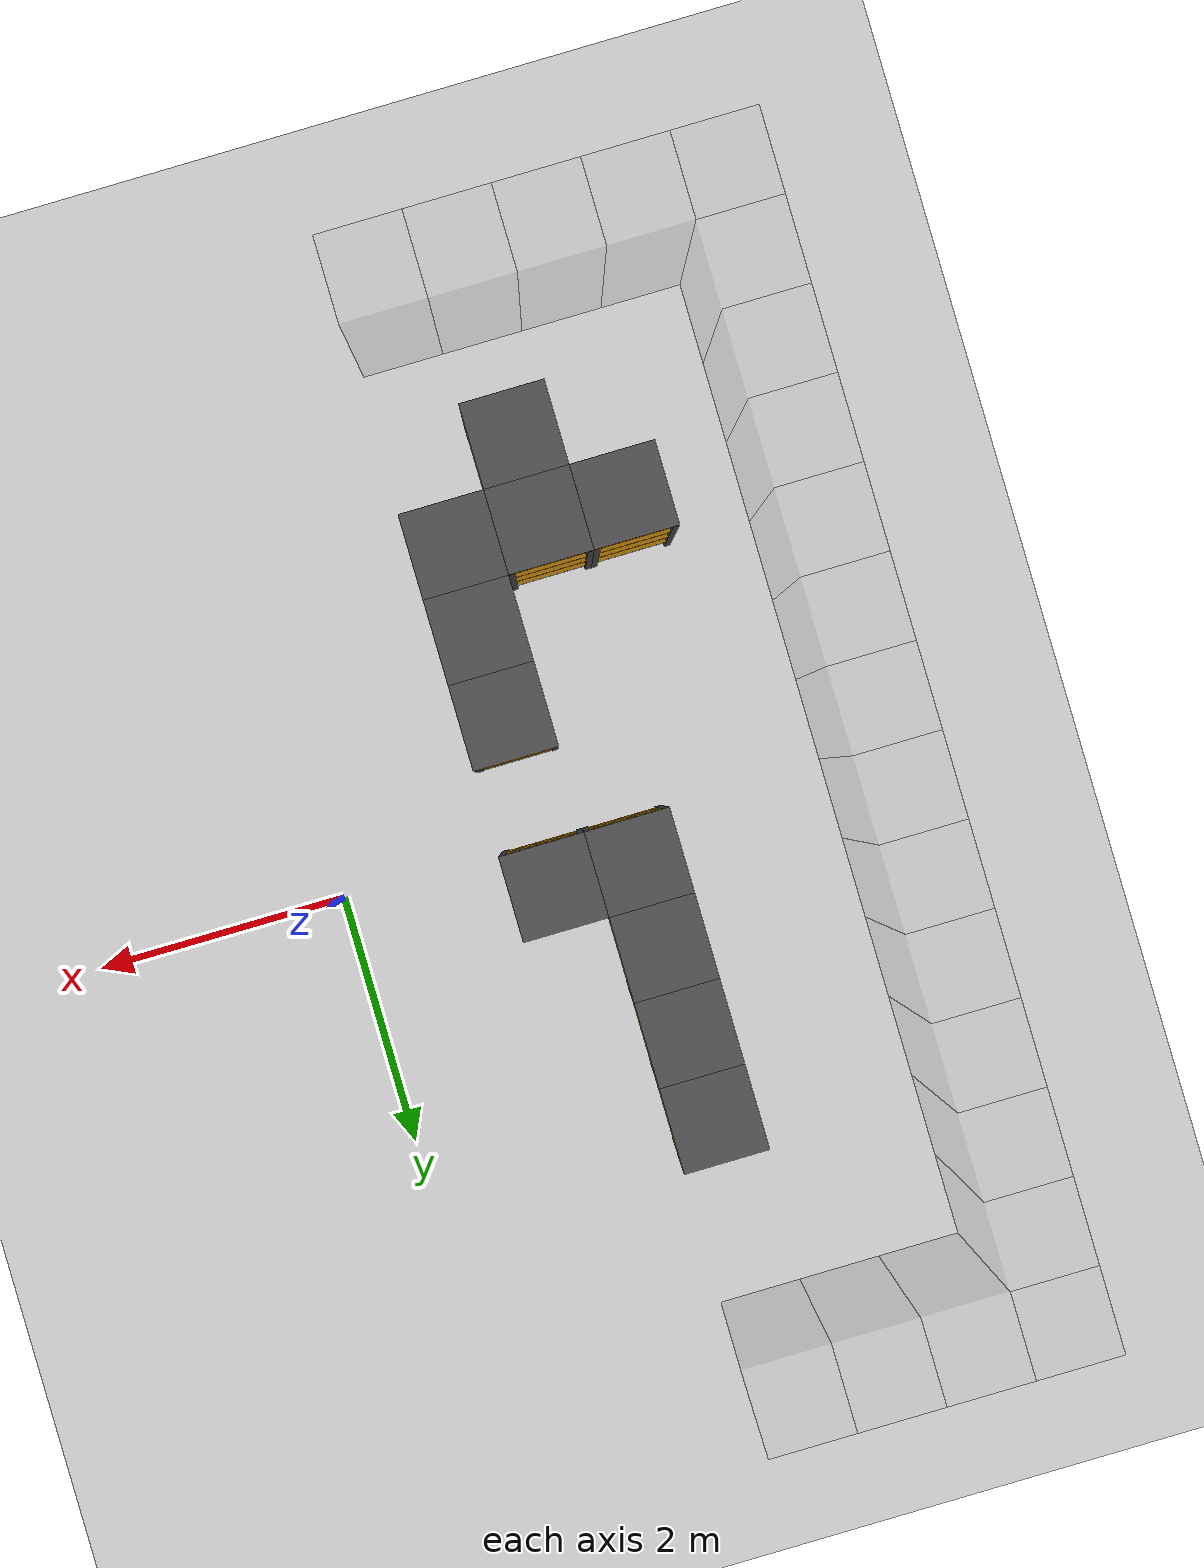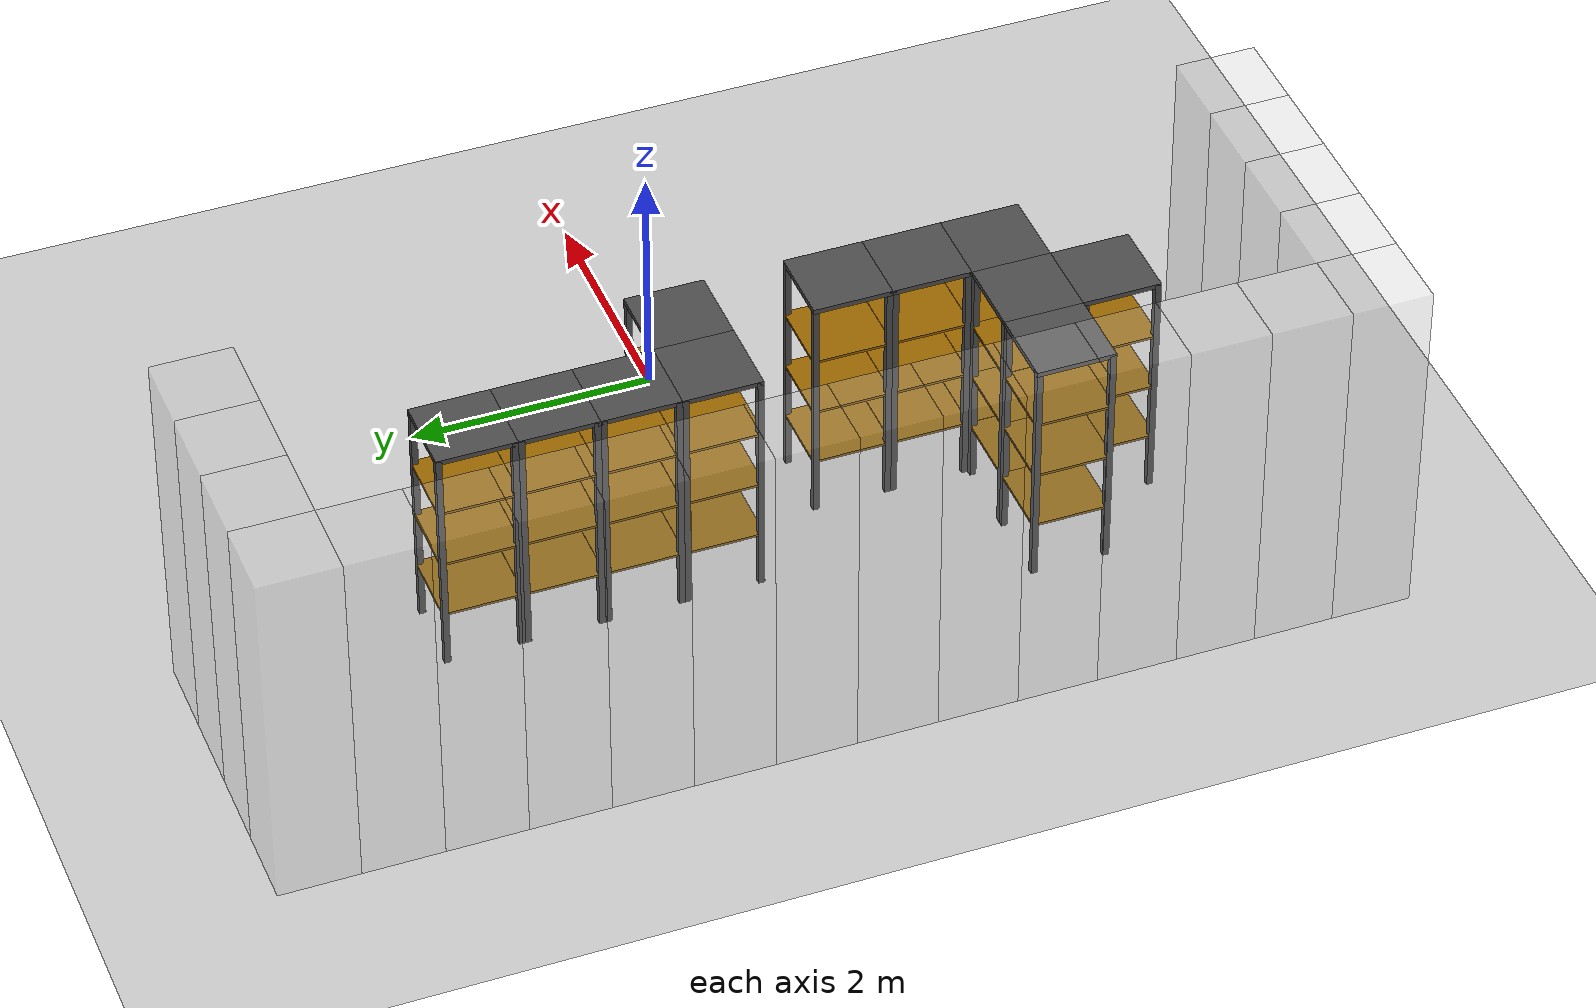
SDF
<sdf version="1.6">
 <world name="default">
  <model name="ground_plane">
   <static>1</static>
   <link name="link">
    <collision name="collision">
     <geometry><plane><normal>0 0 1</normal><size>100 100</size></plane></geometry>
     <surface><friction><ode><mu>100</mu><mu2>50</mu2></ode></friction></surface>
    </collision>
    <visual name="visual">
     <cast_shadows>0</cast_shadows>
     <geometry><plane><normal>0 0 1</normal><size>100 100</size></plane></geometry>
     <material>
      <script><uri>file://media/materials/scripts/gazebo.material</uri><name>Gazebo/Grey</name></script>
     </material>
    </visual>
   </link>
  </model>
  <model name="pole_0_0">
   <static>1</static>
   <link name="main_block">
    <pose>0 0 1.5 0 -0 0</pose>
    <collision name="collision"><geometry><box><size>0.65 0.65 3</size></box></geometry></collision>
    <visual name="visual">
     <geometry><box><size>0.65 0.65 3</size></box></geometry>
     <material><ambient>0.5 0.5 0.5 0.25</ambient><diffuse>0.75 0.75 0.75 0.25</diffuse></material>
    </visual>
   </link>
   <pose>-4.225 -4.225 0 0 -0 0</pose>
  </model>
  <model name="pole_0_1">
   <static>1</static>
   <link name="main_block">
    <pose>0 0 1.5 0 -0 0</pose>
    <collision name="collision"><geometry><box><size>0.65 0.65 3</size></box></geometry></collision>
    <visual name="visual">
     <geometry><box><size>0.65 0.65 3</size></box></geometry>
     <material><ambient>0.5 0.5 0.5 0.25</ambient><diffuse>0.75 0.75 0.75 0.25</diffuse></material>
    </visual>
   </link>
   <pose>-3.575 -4.225 0 0 -0 0</pose>
  </model>
  <model name="pole_0_2">
   <static>1</static>
   <link name="main_block">
    <pose>0 0 1.5 0 -0 0</pose>
    <collision name="collision"><geometry><box><size>0.65 0.65 3</size></box></geometry></collision>
    <visual name="visual">
     <geometry><box><size>0.65 0.65 3</size></box></geometry>
     <material><ambient>0.5 0.5 0.5 0.25</ambient><diffuse>0.75 0.75 0.75 0.25</diffuse></material>
    </visual>
   </link>
   <pose>-2.925 -4.225 0 0 -0 0</pose>
  </model>
  <model name="pole_0_3">
   <static>1</static>
   <link name="main_block">
    <pose>0 0 1.5 0 -0 0</pose>
    <collision name="collision"><geometry><box><size>0.65 0.65 3</size></box></geometry></collision>
    <visual name="visual">
     <geometry><box><size>0.65 0.65 3</size></box></geometry>
     <material><ambient>0.5 0.5 0.5 0.25</ambient><diffuse>0.75 0.75 0.75 0.25</diffuse></material>
    </visual>
   </link>
   <pose>-2.275 -4.225 0 0 -0 0</pose>
  </model>
  <model name="pole_0_4">
   <static>1</static>
   <link name="main_block">
    <pose>0 0 1.5 0 -0 0</pose>
    <collision name="collision"><geometry><box><size>0.65 0.65 3</size></box></geometry></collision>
    <visual name="visual">
     <geometry><box><size>0.65 0.65 3</size></box></geometry>
     <material><ambient>0.5 0.5 0.5 0.25</ambient><diffuse>0.75 0.75 0.75 0.25</diffuse></material>
    </visual>
   </link>
   <pose>-1.625 -4.225 0 0 -0 0</pose>
  </model>
  <model name="pole_1_0">
   <static>1</static>
   <link name="main_block">
    <pose>0 0 1.5 0 -0 0</pose>
    <collision name="collision"><geometry><box><size>0.65 0.65 3</size></box></geometry></collision>
    <visual name="visual">
     <geometry><box><size>0.65 0.65 3</size></box></geometry>
     <material><ambient>0.5 0.5 0.5 0.25</ambient><diffuse>0.75 0.75 0.75 0.25</diffuse></material>
    </visual>
   </link>
   <pose>-4.225 -3.575 0 0 -0 0</pose>
  </model>
  <model name="pole_2_0">
   <static>1</static>
   <link name="main_block">
    <pose>0 0 1.5 0 -0 0</pose>
    <collision name="collision"><geometry><box><size>0.65 0.65 3</size></box></geometry></collision>
    <visual name="visual">
     <geometry><box><size>0.65 0.65 3</size></box></geometry>
     <material><ambient>0.5 0.5 0.5 0.25</ambient><diffuse>0.75 0.75 0.75 0.25</diffuse></material>
    </visual>
   </link>
   <pose>-4.225 -2.925 0 0 -0 0</pose>
  </model>
  <model name="warehouse_shelf_2_3">
   <static>1</static>
   <link name="main_block">
    <pose>0 0 1.25 0 -0 0</pose>
    <collision name="collision"><geometry><box><size>0.65 0.65 1.5</size></box></geometry></collision>
   </link>
   <link name="leg_1">
    <pose>0.3 0.3 1 0 -0 0</pose>
    <collision name="collision"><geometry><box><size>0.05 0.05 2</size></box></geometry></collision>
    <visual name="visual">
     <geometry><box><size>0.05 0.05 2</size></box></geometry>
     <material><ambient>0.2 0.2 0.2 1</ambient><diffuse>0.3 0.3 0.3 1</diffuse></material>
    </visual>
   </link>
   <link name="leg_2">
    <pose>-0.3 0.3 1 0 -0 0</pose>
    <collision name="collision"><geometry><box><size>0.05 0.05 2</size></box></geometry></collision>
    <visual name="visual">
     <geometry><box><size>0.05 0.05 2</size></box></geometry>
     <material><ambient>0.2 0.2 0.2 1</ambient><diffuse>0.3 0.3 0.3 1</diffuse></material>
    </visual>
   </link>
   <link name="leg_3">
    <pose>-0.3 -0.3 1 0 -0 0</pose>
    <collision name="collision"><geometry><box><size>0.05 0.05 2</size></box></geometry></collision>
    <visual name="visual">
     <geometry><box><size>0.05 0.05 2</size></box></geometry>
     <material><ambient>0.2 0.2 0.2 1</ambient><diffuse>0.3 0.3 0.3 1</diffuse></material>
    </visual>
   </link>
   <link name="leg_4">
    <pose>0.3 -0.3 1 0 -0 0</pose>
    <collision name="collision"><geometry><box><size>0.05 0.05 2</size></box></geometry></collision>
    <visual name="visual">
     <geometry><box><size>0.05 0.05 2</size></box></geometry>
     <material><ambient>0.2 0.2 0.2 1</ambient><diffuse>0.3 0.3 0.3 1</diffuse></material>
    </visual>
   </link>
   <link name="shelf_0">
    <pose>0 0 0.49 0 -0 0</pose>
    <visual name="visual">
     <geometry><box><size>0.649 0.649 0.02</size></box></geometry>
     <material><ambient>0.2 0.05 0 1</ambient><diffuse>0.6 0.4 0 1</diffuse></material>
    </visual>
   </link>
   <link name="shelf_1">
    <pose>0 0 0.99 0 -0 0</pose>
    <visual name="visual">
     <geometry><box><size>0.649 0.649 0.02</size></box></geometry>
     <material><ambient>0.2 0.05 0 1</ambient><diffuse>0.6 0.4 0 1</diffuse></material>
    </visual>
   </link>
   <link name="shelf_2">
    <pose>0 0 1.49 0 -0 0</pose>
    <visual name="visual">
     <geometry><box><size>0.649 0.649 0.02</size></box></geometry>
     <material><ambient>0.2 0.05 0 1</ambient><diffuse>0.6 0.4 0 1</diffuse></material>
    </visual>
   </link>
   <link name="shelf_top">
    <pose>0 0 1.99 0 -0 0</pose>
    <visual name="visual">
     <geometry><box><size>0.65 0.65 0.04</size></box></geometry>
     <material><ambient>0.2 0.2 0.2 1</ambient><diffuse>0.3 0.3 0.3 1</diffuse></material>
    </visual>
   </link>
   <pose>-2.275 -2.925 0 0 -0 0</pose>
  </model>
  <model name="pole_3_0">
   <static>1</static>
   <link name="main_block">
    <pose>0 0 1.5 0 -0 0</pose>
    <collision name="collision"><geometry><box><size>0.65 0.65 3</size></box></geometry></collision>
    <visual name="visual">
     <geometry><box><size>0.65 0.65 3</size></box></geometry>
     <material><ambient>0.5 0.5 0.5 0.25</ambient><diffuse>0.75 0.75 0.75 0.25</diffuse></material>
    </visual>
   </link>
   <pose>-4.225 -2.275 0 0 -0 0</pose>
  </model>
  <model name="warehouse_shelf_3_2">
   <static>1</static>
   <link name="main_block">
    <pose>0 0 1.25 0 -0 0</pose>
    <collision name="collision"><geometry><box><size>0.65 0.65 1.5</size></box></geometry></collision>
   </link>
   <link name="leg_1">
    <pose>0.3 0.3 1 0 -0 0</pose>
    <collision name="collision"><geometry><box><size>0.05 0.05 2</size></box></geometry></collision>
    <visual name="visual">
     <geometry><box><size>0.05 0.05 2</size></box></geometry>
     <material><ambient>0.2 0.2 0.2 1</ambient><diffuse>0.3 0.3 0.3 1</diffuse></material>
    </visual>
   </link>
   <link name="leg_2">
    <pose>-0.3 0.3 1 0 -0 0</pose>
    <collision name="collision"><geometry><box><size>0.05 0.05 2</size></box></geometry></collision>
    <visual name="visual">
     <geometry><box><size>0.05 0.05 2</size></box></geometry>
     <material><ambient>0.2 0.2 0.2 1</ambient><diffuse>0.3 0.3 0.3 1</diffuse></material>
    </visual>
   </link>
   <link name="leg_3">
    <pose>-0.3 -0.3 1 0 -0 0</pose>
    <collision name="collision"><geometry><box><size>0.05 0.05 2</size></box></geometry></collision>
    <visual name="visual">
     <geometry><box><size>0.05 0.05 2</size></box></geometry>
     <material><ambient>0.2 0.2 0.2 1</ambient><diffuse>0.3 0.3 0.3 1</diffuse></material>
    </visual>
   </link>
   <link name="leg_4">
    <pose>0.3 -0.3 1 0 -0 0</pose>
    <collision name="collision"><geometry><box><size>0.05 0.05 2</size></box></geometry></collision>
    <visual name="visual">
     <geometry><box><size>0.05 0.05 2</size></box></geometry>
     <material><ambient>0.2 0.2 0.2 1</ambient><diffuse>0.3 0.3 0.3 1</diffuse></material>
    </visual>
   </link>
   <link name="shelf_0">
    <pose>0 0 0.49 0 -0 0</pose>
    <visual name="visual">
     <geometry><box><size>0.649 0.649 0.02</size></box></geometry>
     <material><ambient>0.2 0.05 0 1</ambient><diffuse>0.6 0.4 0 1</diffuse></material>
    </visual>
   </link>
   <link name="shelf_1">
    <pose>0 0 0.99 0 -0 0</pose>
    <visual name="visual">
     <geometry><box><size>0.649 0.649 0.02</size></box></geometry>
     <material><ambient>0.2 0.05 0 1</ambient><diffuse>0.6 0.4 0 1</diffuse></material>
    </visual>
   </link>
   <link name="shelf_2">
    <pose>0 0 1.49 0 -0 0</pose>
    <visual name="visual">
     <geometry><box><size>0.649 0.649 0.02</size></box></geometry>
     <material><ambient>0.2 0.05 0 1</ambient><diffuse>0.6 0.4 0 1</diffuse></material>
    </visual>
   </link>
   <link name="shelf_top">
    <pose>0 0 1.99 0 -0 0</pose>
    <visual name="visual">
     <geometry><box><size>0.65 0.65 0.04</size></box></geometry>
     <material><ambient>0.2 0.2 0.2 1</ambient><diffuse>0.3 0.3 0.3 1</diffuse></material>
    </visual>
   </link>
   <pose>-2.925 -2.275 0 0 -0 0</pose>
  </model>
  <model name="warehouse_shelf_3_3">
   <static>1</static>
   <link name="main_block">
    <pose>0 0 1.25 0 -0 0</pose>
    <collision name="collision"><geometry><box><size>0.65 0.65 1.5</size></box></geometry></collision>
   </link>
   <link name="leg_1">
    <pose>0.3 0.3 1 0 -0 0</pose>
    <collision name="collision"><geometry><box><size>0.05 0.05 2</size></box></geometry></collision>
    <visual name="visual">
     <geometry><box><size>0.05 0.05 2</size></box></geometry>
     <material><ambient>0.2 0.2 0.2 1</ambient><diffuse>0.3 0.3 0.3 1</diffuse></material>
    </visual>
   </link>
   <link name="leg_2">
    <pose>-0.3 0.3 1 0 -0 0</pose>
    <collision name="collision"><geometry><box><size>0.05 0.05 2</size></box></geometry></collision>
    <visual name="visual">
     <geometry><box><size>0.05 0.05 2</size></box></geometry>
     <material><ambient>0.2 0.2 0.2 1</ambient><diffuse>0.3 0.3 0.3 1</diffuse></material>
    </visual>
   </link>
   <link name="leg_3">
    <pose>-0.3 -0.3 1 0 -0 0</pose>
    <collision name="collision"><geometry><box><size>0.05 0.05 2</size></box></geometry></collision>
    <visual name="visual">
     <geometry><box><size>0.05 0.05 2</size></box></geometry>
     <material><ambient>0.2 0.2 0.2 1</ambient><diffuse>0.3 0.3 0.3 1</diffuse></material>
    </visual>
   </link>
   <link name="leg_4">
    <pose>0.3 -0.3 1 0 -0 0</pose>
    <collision name="collision"><geometry><box><size>0.05 0.05 2</size></box></geometry></collision>
    <visual name="visual">
     <geometry><box><size>0.05 0.05 2</size></box></geometry>
     <material><ambient>0.2 0.2 0.2 1</ambient><diffuse>0.3 0.3 0.3 1</diffuse></material>
    </visual>
   </link>
   <link name="shelf_0">
    <pose>0 0 0.49 0 -0 0</pose>
    <visual name="visual">
     <geometry><box><size>0.649 0.649 0.02</size></box></geometry>
     <material><ambient>0.2 0.05 0 1</ambient><diffuse>0.6 0.4 0 1</diffuse></material>
    </visual>
   </link>
   <link name="shelf_1">
    <pose>0 0 0.99 0 -0 0</pose>
    <visual name="visual">
     <geometry><box><size>0.649 0.649 0.02</size></box></geometry>
     <material><ambient>0.2 0.05 0 1</ambient><diffuse>0.6 0.4 0 1</diffuse></material>
    </visual>
   </link>
   <link name="shelf_2">
    <pose>0 0 1.49 0 -0 0</pose>
    <visual name="visual">
     <geometry><box><size>0.649 0.649 0.02</size></box></geometry>
     <material><ambient>0.2 0.05 0 1</ambient><diffuse>0.6 0.4 0 1</diffuse></material>
    </visual>
   </link>
   <link name="shelf_top">
    <pose>0 0 1.99 0 -0 0</pose>
    <visual name="visual">
     <geometry><box><size>0.65 0.65 0.04</size></box></geometry>
     <material><ambient>0.2 0.2 0.2 1</ambient><diffuse>0.3 0.3 0.3 1</diffuse></material>
    </visual>
   </link>
   <pose>-2.275 -2.275 0 0 -0 0</pose>
  </model>
  <model name="warehouse_shelf_3_4">
   <static>1</static>
   <link name="main_block">
    <pose>0 0 1.25 0 -0 0</pose>
    <collision name="collision"><geometry><box><size>0.65 0.65 1.5</size></box></geometry></collision>
   </link>
   <link name="leg_1">
    <pose>0.3 0.3 1 0 -0 0</pose>
    <collision name="collision"><geometry><box><size>0.05 0.05 2</size></box></geometry></collision>
    <visual name="visual">
     <geometry><box><size>0.05 0.05 2</size></box></geometry>
     <material><ambient>0.2 0.2 0.2 1</ambient><diffuse>0.3 0.3 0.3 1</diffuse></material>
    </visual>
   </link>
   <link name="leg_2">
    <pose>-0.3 0.3 1 0 -0 0</pose>
    <collision name="collision"><geometry><box><size>0.05 0.05 2</size></box></geometry></collision>
    <visual name="visual">
     <geometry><box><size>0.05 0.05 2</size></box></geometry>
     <material><ambient>0.2 0.2 0.2 1</ambient><diffuse>0.3 0.3 0.3 1</diffuse></material>
    </visual>
   </link>
   <link name="leg_3">
    <pose>-0.3 -0.3 1 0 -0 0</pose>
    <collision name="collision"><geometry><box><size>0.05 0.05 2</size></box></geometry></collision>
    <visual name="visual">
     <geometry><box><size>0.05 0.05 2</size></box></geometry>
     <material><ambient>0.2 0.2 0.2 1</ambient><diffuse>0.3 0.3 0.3 1</diffuse></material>
    </visual>
   </link>
   <link name="leg_4">
    <pose>0.3 -0.3 1 0 -0 0</pose>
    <collision name="collision"><geometry><box><size>0.05 0.05 2</size></box></geometry></collision>
    <visual name="visual">
     <geometry><box><size>0.05 0.05 2</size></box></geometry>
     <material><ambient>0.2 0.2 0.2 1</ambient><diffuse>0.3 0.3 0.3 1</diffuse></material>
    </visual>
   </link>
   <link name="shelf_0">
    <pose>0 0 0.49 0 -0 0</pose>
    <visual name="visual">
     <geometry><box><size>0.649 0.649 0.02</size></box></geometry>
     <material><ambient>0.2 0.05 0 1</ambient><diffuse>0.6 0.4 0 1</diffuse></material>
    </visual>
   </link>
   <link name="shelf_1">
    <pose>0 0 0.99 0 -0 0</pose>
    <visual name="visual">
     <geometry><box><size>0.649 0.649 0.02</size></box></geometry>
     <material><ambient>0.2 0.05 0 1</ambient><diffuse>0.6 0.4 0 1</diffuse></material>
    </visual>
   </link>
   <link name="shelf_2">
    <pose>0 0 1.49 0 -0 0</pose>
    <visual name="visual">
     <geometry><box><size>0.649 0.649 0.02</size></box></geometry>
     <material><ambient>0.2 0.05 0 1</ambient><diffuse>0.6 0.4 0 1</diffuse></material>
    </visual>
   </link>
   <link name="shelf_top">
    <pose>0 0 1.99 0 -0 0</pose>
    <visual name="visual">
     <geometry><box><size>0.65 0.65 0.04</size></box></geometry>
     <material><ambient>0.2 0.2 0.2 1</ambient><diffuse>0.3 0.3 0.3 1</diffuse></material>
    </visual>
   </link>
   <pose>-1.625 -2.275 0 0 -0 0</pose>
  </model>
  <model name="pole_4_0">
   <static>1</static>
   <link name="main_block">
    <pose>0 0 1.5 0 -0 0</pose>
    <collision name="collision"><geometry><box><size>0.65 0.65 3</size></box></geometry></collision>
    <visual name="visual">
     <geometry><box><size>0.65 0.65 3</size></box></geometry>
     <material><ambient>0.5 0.5 0.5 0.25</ambient><diffuse>0.75 0.75 0.75 0.25</diffuse></material>
    </visual>
   </link>
   <pose>-4.225 -1.625 0 0 -0 0</pose>
  </model>
  <model name="warehouse_shelf_4_4">
   <static>1</static>
   <link name="main_block">
    <pose>0 0 1.25 0 -0 0</pose>
    <collision name="collision"><geometry><box><size>0.65 0.65 1.5</size></box></geometry></collision>
   </link>
   <link name="leg_1">
    <pose>0.3 0.3 1 0 -0 0</pose>
    <collision name="collision"><geometry><box><size>0.05 0.05 2</size></box></geometry></collision>
    <visual name="visual">
     <geometry><box><size>0.05 0.05 2</size></box></geometry>
     <material><ambient>0.2 0.2 0.2 1</ambient><diffuse>0.3 0.3 0.3 1</diffuse></material>
    </visual>
   </link>
   <link name="leg_2">
    <pose>-0.3 0.3 1 0 -0 0</pose>
    <collision name="collision"><geometry><box><size>0.05 0.05 2</size></box></geometry></collision>
    <visual name="visual">
     <geometry><box><size>0.05 0.05 2</size></box></geometry>
     <material><ambient>0.2 0.2 0.2 1</ambient><diffuse>0.3 0.3 0.3 1</diffuse></material>
    </visual>
   </link>
   <link name="leg_3">
    <pose>-0.3 -0.3 1 0 -0 0</pose>
    <collision name="collision"><geometry><box><size>0.05 0.05 2</size></box></geometry></collision>
    <visual name="visual">
     <geometry><box><size>0.05 0.05 2</size></box></geometry>
     <material><ambient>0.2 0.2 0.2 1</ambient><diffuse>0.3 0.3 0.3 1</diffuse></material>
    </visual>
   </link>
   <link name="leg_4">
    <pose>0.3 -0.3 1 0 -0 0</pose>
    <collision name="collision"><geometry><box><size>0.05 0.05 2</size></box></geometry></collision>
    <visual name="visual">
     <geometry><box><size>0.05 0.05 2</size></box></geometry>
     <material><ambient>0.2 0.2 0.2 1</ambient><diffuse>0.3 0.3 0.3 1</diffuse></material>
    </visual>
   </link>
   <link name="shelf_0">
    <pose>0 0 0.49 0 -0 0</pose>
    <visual name="visual">
     <geometry><box><size>0.649 0.649 0.02</size></box></geometry>
     <material><ambient>0.2 0.05 0 1</ambient><diffuse>0.6 0.4 0 1</diffuse></material>
    </visual>
   </link>
   <link name="shelf_1">
    <pose>0 0 0.99 0 -0 0</pose>
    <visual name="visual">
     <geometry><box><size>0.649 0.649 0.02</size></box></geometry>
     <material><ambient>0.2 0.05 0 1</ambient><diffuse>0.6 0.4 0 1</diffuse></material>
    </visual>
   </link>
   <link name="shelf_2">
    <pose>0 0 1.49 0 -0 0</pose>
    <visual name="visual">
     <geometry><box><size>0.649 0.649 0.02</size></box></geometry>
     <material><ambient>0.2 0.05 0 1</ambient><diffuse>0.6 0.4 0 1</diffuse></material>
    </visual>
   </link>
   <link name="shelf_top">
    <pose>0 0 1.99 0 -0 0</pose>
    <visual name="visual">
     <geometry><box><size>0.65 0.65 0.04</size></box></geometry>
     <material><ambient>0.2 0.2 0.2 1</ambient><diffuse>0.3 0.3 0.3 1</diffuse></material>
    </visual>
   </link>
   <pose>-1.625 -1.625 0 0 -0 0</pose>
  </model>
  <model name="pole_5_0">
   <static>1</static>
   <link name="main_block">
    <pose>0 0 1.5 0 -0 0</pose>
    <collision name="collision"><geometry><box><size>0.65 0.65 3</size></box></geometry></collision>
    <visual name="visual">
     <geometry><box><size>0.65 0.65 3</size></box></geometry>
     <material><ambient>0.5 0.5 0.5 0.25</ambient><diffuse>0.75 0.75 0.75 0.25</diffuse></material>
    </visual>
   </link>
   <pose>-4.225 -0.975 0 0 -0 0</pose>
  </model>
  <model name="warehouse_shelf_5_4">
   <static>1</static>
   <link name="main_block">
    <pose>0 0 1.25 0 -0 0</pose>
    <collision name="collision"><geometry><box><size>0.65 0.65 1.5</size></box></geometry></collision>
   </link>
   <link name="leg_1">
    <pose>0.3 0.3 1 0 -0 0</pose>
    <collision name="collision"><geometry><box><size>0.05 0.05 2</size></box></geometry></collision>
    <visual name="visual">
     <geometry><box><size>0.05 0.05 2</size></box></geometry>
     <material><ambient>0.2 0.2 0.2 1</ambient><diffuse>0.3 0.3 0.3 1</diffuse></material>
    </visual>
   </link>
   <link name="leg_2">
    <pose>-0.3 0.3 1 0 -0 0</pose>
    <collision name="collision"><geometry><box><size>0.05 0.05 2</size></box></geometry></collision>
    <visual name="visual">
     <geometry><box><size>0.05 0.05 2</size></box></geometry>
     <material><ambient>0.2 0.2 0.2 1</ambient><diffuse>0.3 0.3 0.3 1</diffuse></material>
    </visual>
   </link>
   <link name="leg_3">
    <pose>-0.3 -0.3 1 0 -0 0</pose>
    <collision name="collision"><geometry><box><size>0.05 0.05 2</size></box></geometry></collision>
    <visual name="visual">
     <geometry><box><size>0.05 0.05 2</size></box></geometry>
     <material><ambient>0.2 0.2 0.2 1</ambient><diffuse>0.3 0.3 0.3 1</diffuse></material>
    </visual>
   </link>
   <link name="leg_4">
    <pose>0.3 -0.3 1 0 -0 0</pose>
    <collision name="collision"><geometry><box><size>0.05 0.05 2</size></box></geometry></collision>
    <visual name="visual">
     <geometry><box><size>0.05 0.05 2</size></box></geometry>
     <material><ambient>0.2 0.2 0.2 1</ambient><diffuse>0.3 0.3 0.3 1</diffuse></material>
    </visual>
   </link>
   <link name="shelf_0">
    <pose>0 0 0.49 0 -0 0</pose>
    <visual name="visual">
     <geometry><box><size>0.649 0.649 0.02</size></box></geometry>
     <material><ambient>0.2 0.05 0 1</ambient><diffuse>0.6 0.4 0 1</diffuse></material>
    </visual>
   </link>
   <link name="shelf_1">
    <pose>0 0 0.99 0 -0 0</pose>
    <visual name="visual">
     <geometry><box><size>0.649 0.649 0.02</size></box></geometry>
     <material><ambient>0.2 0.05 0 1</ambient><diffuse>0.6 0.4 0 1</diffuse></material>
    </visual>
   </link>
   <link name="shelf_2">
    <pose>0 0 1.49 0 -0 0</pose>
    <visual name="visual">
     <geometry><box><size>0.649 0.649 0.02</size></box></geometry>
     <material><ambient>0.2 0.05 0 1</ambient><diffuse>0.6 0.4 0 1</diffuse></material>
    </visual>
   </link>
   <link name="shelf_top">
    <pose>0 0 1.99 0 -0 0</pose>
    <visual name="visual">
     <geometry><box><size>0.65 0.65 0.04</size></box></geometry>
     <material><ambient>0.2 0.2 0.2 1</ambient><diffuse>0.3 0.3 0.3 1</diffuse></material>
    </visual>
   </link>
   <pose>-1.625 -0.975 0 0 -0 0</pose>
  </model>
  <model name="pole_6_0">
   <static>1</static>
   <link name="main_block">
    <pose>0 0 1.5 0 -0 0</pose>
    <collision name="collision"><geometry><box><size>0.65 0.65 3</size></box></geometry></collision>
    <visual name="visual">
     <geometry><box><size>0.65 0.65 3</size></box></geometry>
     <material><ambient>0.5 0.5 0.5 0.25</ambient><diffuse>0.75 0.75 0.75 0.25</diffuse></material>
    </visual>
   </link>
   <pose>-4.225 -0.325 0 0 -0 0</pose>
  </model>
  <model name="pole_7_0">
   <static>1</static>
   <link name="main_block">
    <pose>0 0 1.5 0 -0 0</pose>
    <collision name="collision"><geometry><box><size>0.65 0.65 3</size></box></geometry></collision>
    <visual name="visual">
     <geometry><box><size>0.65 0.65 3</size></box></geometry>
     <material><ambient>0.5 0.5 0.5 0.25</ambient><diffuse>0.75 0.75 0.75 0.25</diffuse></material>
    </visual>
   </link>
   <pose>-4.225 0.325 0 0 -0 0</pose>
  </model>
  <model name="warehouse_shelf_7_3">
   <static>1</static>
   <link name="main_block">
    <pose>0 0 1.25 0 -0 0</pose>
    <collision name="collision"><geometry><box><size>0.65 0.65 1.5</size></box></geometry></collision>
   </link>
   <link name="leg_1">
    <pose>0.3 0.3 1 0 -0 0</pose>
    <collision name="collision"><geometry><box><size>0.05 0.05 2</size></box></geometry></collision>
    <visual name="visual">
     <geometry><box><size>0.05 0.05 2</size></box></geometry>
     <material><ambient>0.2 0.2 0.2 1</ambient><diffuse>0.3 0.3 0.3 1</diffuse></material>
    </visual>
   </link>
   <link name="leg_2">
    <pose>-0.3 0.3 1 0 -0 0</pose>
    <collision name="collision"><geometry><box><size>0.05 0.05 2</size></box></geometry></collision>
    <visual name="visual">
     <geometry><box><size>0.05 0.05 2</size></box></geometry>
     <material><ambient>0.2 0.2 0.2 1</ambient><diffuse>0.3 0.3 0.3 1</diffuse></material>
    </visual>
   </link>
   <link name="leg_3">
    <pose>-0.3 -0.3 1 0 -0 0</pose>
    <collision name="collision"><geometry><box><size>0.05 0.05 2</size></box></geometry></collision>
    <visual name="visual">
     <geometry><box><size>0.05 0.05 2</size></box></geometry>
     <material><ambient>0.2 0.2 0.2 1</ambient><diffuse>0.3 0.3 0.3 1</diffuse></material>
    </visual>
   </link>
   <link name="leg_4">
    <pose>0.3 -0.3 1 0 -0 0</pose>
    <collision name="collision"><geometry><box><size>0.05 0.05 2</size></box></geometry></collision>
    <visual name="visual">
     <geometry><box><size>0.05 0.05 2</size></box></geometry>
     <material><ambient>0.2 0.2 0.2 1</ambient><diffuse>0.3 0.3 0.3 1</diffuse></material>
    </visual>
   </link>
   <link name="shelf_0">
    <pose>0 0 0.49 0 -0 0</pose>
    <visual name="visual">
     <geometry><box><size>0.649 0.649 0.02</size></box></geometry>
     <material><ambient>0.2 0.05 0 1</ambient><diffuse>0.6 0.4 0 1</diffuse></material>
    </visual>
   </link>
   <link name="shelf_1">
    <pose>0 0 0.99 0 -0 0</pose>
    <visual name="visual">
     <geometry><box><size>0.649 0.649 0.02</size></box></geometry>
     <material><ambient>0.2 0.05 0 1</ambient><diffuse>0.6 0.4 0 1</diffuse></material>
    </visual>
   </link>
   <link name="shelf_2">
    <pose>0 0 1.49 0 -0 0</pose>
    <visual name="visual">
     <geometry><box><size>0.649 0.649 0.02</size></box></geometry>
     <material><ambient>0.2 0.05 0 1</ambient><diffuse>0.6 0.4 0 1</diffuse></material>
    </visual>
   </link>
   <link name="shelf_top">
    <pose>0 0 1.99 0 -0 0</pose>
    <visual name="visual">
     <geometry><box><size>0.65 0.65 0.04</size></box></geometry>
     <material><ambient>0.2 0.2 0.2 1</ambient><diffuse>0.3 0.3 0.3 1</diffuse></material>
    </visual>
   </link>
   <pose>-2.275 0.325 0 0 -0 0</pose>
  </model>
  <model name="warehouse_shelf_7_4">
   <static>1</static>
   <link name="main_block">
    <pose>0 0 1.25 0 -0 0</pose>
    <collision name="collision"><geometry><box><size>0.65 0.65 1.5</size></box></geometry></collision>
   </link>
   <link name="leg_1">
    <pose>0.3 0.3 1 0 -0 0</pose>
    <collision name="collision"><geometry><box><size>0.05 0.05 2</size></box></geometry></collision>
    <visual name="visual">
     <geometry><box><size>0.05 0.05 2</size></box></geometry>
     <material><ambient>0.2 0.2 0.2 1</ambient><diffuse>0.3 0.3 0.3 1</diffuse></material>
    </visual>
   </link>
   <link name="leg_2">
    <pose>-0.3 0.3 1 0 -0 0</pose>
    <collision name="collision"><geometry><box><size>0.05 0.05 2</size></box></geometry></collision>
    <visual name="visual">
     <geometry><box><size>0.05 0.05 2</size></box></geometry>
     <material><ambient>0.2 0.2 0.2 1</ambient><diffuse>0.3 0.3 0.3 1</diffuse></material>
    </visual>
   </link>
   <link name="leg_3">
    <pose>-0.3 -0.3 1 0 -0 0</pose>
    <collision name="collision"><geometry><box><size>0.05 0.05 2</size></box></geometry></collision>
    <visual name="visual">
     <geometry><box><size>0.05 0.05 2</size></box></geometry>
     <material><ambient>0.2 0.2 0.2 1</ambient><diffuse>0.3 0.3 0.3 1</diffuse></material>
    </visual>
   </link>
   <link name="leg_4">
    <pose>0.3 -0.3 1 0 -0 0</pose>
    <collision name="collision"><geometry><box><size>0.05 0.05 2</size></box></geometry></collision>
    <visual name="visual">
     <geometry><box><size>0.05 0.05 2</size></box></geometry>
     <material><ambient>0.2 0.2 0.2 1</ambient><diffuse>0.3 0.3 0.3 1</diffuse></material>
    </visual>
   </link>
   <link name="shelf_0">
    <pose>0 0 0.49 0 -0 0</pose>
    <visual name="visual">
     <geometry><box><size>0.649 0.649 0.02</size></box></geometry>
     <material><ambient>0.2 0.05 0 1</ambient><diffuse>0.6 0.4 0 1</diffuse></material>
    </visual>
   </link>
   <link name="shelf_1">
    <pose>0 0 0.99 0 -0 0</pose>
    <visual name="visual">
     <geometry><box><size>0.649 0.649 0.02</size></box></geometry>
     <material><ambient>0.2 0.05 0 1</ambient><diffuse>0.6 0.4 0 1</diffuse></material>
    </visual>
   </link>
   <link name="shelf_2">
    <pose>0 0 1.49 0 -0 0</pose>
    <visual name="visual">
     <geometry><box><size>0.649 0.649 0.02</size></box></geometry>
     <material><ambient>0.2 0.05 0 1</ambient><diffuse>0.6 0.4 0 1</diffuse></material>
    </visual>
   </link>
   <link name="shelf_top">
    <pose>0 0 1.99 0 -0 0</pose>
    <visual name="visual">
     <geometry><box><size>0.65 0.65 0.04</size></box></geometry>
     <material><ambient>0.2 0.2 0.2 1</ambient><diffuse>0.3 0.3 0.3 1</diffuse></material>
    </visual>
   </link>
   <pose>-1.625 0.325 0 0 -0 0</pose>
  </model>
  <model name="pole_8_0">
   <static>1</static>
   <link name="main_block">
    <pose>0 0 1.5 0 -0 0</pose>
    <collision name="collision"><geometry><box><size>0.65 0.65 3</size></box></geometry></collision>
    <visual name="visual">
     <geometry><box><size>0.65 0.65 3</size></box></geometry>
     <material><ambient>0.5 0.5 0.5 0.25</ambient><diffuse>0.75 0.75 0.75 0.25</diffuse></material>
    </visual>
   </link>
   <pose>-4.225 0.975 0 0 -0 0</pose>
  </model>
  <model name="warehouse_shelf_8_3">
   <static>1</static>
   <link name="main_block">
    <pose>0 0 1.25 0 -0 0</pose>
    <collision name="collision"><geometry><box><size>0.65 0.65 1.5</size></box></geometry></collision>
   </link>
   <link name="leg_1">
    <pose>0.3 0.3 1 0 -0 0</pose>
    <collision name="collision"><geometry><box><size>0.05 0.05 2</size></box></geometry></collision>
    <visual name="visual">
     <geometry><box><size>0.05 0.05 2</size></box></geometry>
     <material><ambient>0.2 0.2 0.2 1</ambient><diffuse>0.3 0.3 0.3 1</diffuse></material>
    </visual>
   </link>
   <link name="leg_2">
    <pose>-0.3 0.3 1 0 -0 0</pose>
    <collision name="collision"><geometry><box><size>0.05 0.05 2</size></box></geometry></collision>
    <visual name="visual">
     <geometry><box><size>0.05 0.05 2</size></box></geometry>
     <material><ambient>0.2 0.2 0.2 1</ambient><diffuse>0.3 0.3 0.3 1</diffuse></material>
    </visual>
   </link>
   <link name="leg_3">
    <pose>-0.3 -0.3 1 0 -0 0</pose>
    <collision name="collision"><geometry><box><size>0.05 0.05 2</size></box></geometry></collision>
    <visual name="visual">
     <geometry><box><size>0.05 0.05 2</size></box></geometry>
     <material><ambient>0.2 0.2 0.2 1</ambient><diffuse>0.3 0.3 0.3 1</diffuse></material>
    </visual>
   </link>
   <link name="leg_4">
    <pose>0.3 -0.3 1 0 -0 0</pose>
    <collision name="collision"><geometry><box><size>0.05 0.05 2</size></box></geometry></collision>
    <visual name="visual">
     <geometry><box><size>0.05 0.05 2</size></box></geometry>
     <material><ambient>0.2 0.2 0.2 1</ambient><diffuse>0.3 0.3 0.3 1</diffuse></material>
    </visual>
   </link>
   <link name="shelf_0">
    <pose>0 0 0.49 0 -0 0</pose>
    <visual name="visual">
     <geometry><box><size>0.649 0.649 0.02</size></box></geometry>
     <material><ambient>0.2 0.05 0 1</ambient><diffuse>0.6 0.4 0 1</diffuse></material>
    </visual>
   </link>
   <link name="shelf_1">
    <pose>0 0 0.99 0 -0 0</pose>
    <visual name="visual">
     <geometry><box><size>0.649 0.649 0.02</size></box></geometry>
     <material><ambient>0.2 0.05 0 1</ambient><diffuse>0.6 0.4 0 1</diffuse></material>
    </visual>
   </link>
   <link name="shelf_2">
    <pose>0 0 1.49 0 -0 0</pose>
    <visual name="visual">
     <geometry><box><size>0.649 0.649 0.02</size></box></geometry>
     <material><ambient>0.2 0.05 0 1</ambient><diffuse>0.6 0.4 0 1</diffuse></material>
    </visual>
   </link>
   <link name="shelf_top">
    <pose>0 0 1.99 0 -0 0</pose>
    <visual name="visual">
     <geometry><box><size>0.65 0.65 0.04</size></box></geometry>
     <material><ambient>0.2 0.2 0.2 1</ambient><diffuse>0.3 0.3 0.3 1</diffuse></material>
    </visual>
   </link>
   <pose>-2.275 0.975 0 0 -0 0</pose>
  </model>
  <model name="pole_9_0">
   <static>1</static>
   <link name="main_block">
    <pose>0 0 1.5 0 -0 0</pose>
    <collision name="collision"><geometry><box><size>0.65 0.65 3</size></box></geometry></collision>
    <visual name="visual">
     <geometry><box><size>0.65 0.65 3</size></box></geometry>
     <material><ambient>0.5 0.5 0.5 0.25</ambient><diffuse>0.75 0.75 0.75 0.25</diffuse></material>
    </visual>
   </link>
   <pose>-4.225 1.625 0 0 -0 0</pose>
  </model>
  <model name="warehouse_shelf_9_3">
   <static>1</static>
   <link name="main_block">
    <pose>0 0 1.25 0 -0 0</pose>
    <collision name="collision"><geometry><box><size>0.65 0.65 1.5</size></box></geometry></collision>
   </link>
   <link name="leg_1">
    <pose>0.3 0.3 1 0 -0 0</pose>
    <collision name="collision"><geometry><box><size>0.05 0.05 2</size></box></geometry></collision>
    <visual name="visual">
     <geometry><box><size>0.05 0.05 2</size></box></geometry>
     <material><ambient>0.2 0.2 0.2 1</ambient><diffuse>0.3 0.3 0.3 1</diffuse></material>
    </visual>
   </link>
   <link name="leg_2">
    <pose>-0.3 0.3 1 0 -0 0</pose>
    <collision name="collision"><geometry><box><size>0.05 0.05 2</size></box></geometry></collision>
    <visual name="visual">
     <geometry><box><size>0.05 0.05 2</size></box></geometry>
     <material><ambient>0.2 0.2 0.2 1</ambient><diffuse>0.3 0.3 0.3 1</diffuse></material>
    </visual>
   </link>
   <link name="leg_3">
    <pose>-0.3 -0.3 1 0 -0 0</pose>
    <collision name="collision"><geometry><box><size>0.05 0.05 2</size></box></geometry></collision>
    <visual name="visual">
     <geometry><box><size>0.05 0.05 2</size></box></geometry>
     <material><ambient>0.2 0.2 0.2 1</ambient><diffuse>0.3 0.3 0.3 1</diffuse></material>
    </visual>
   </link>
   <link name="leg_4">
    <pose>0.3 -0.3 1 0 -0 0</pose>
    <collision name="collision"><geometry><box><size>0.05 0.05 2</size></box></geometry></collision>
    <visual name="visual">
     <geometry><box><size>0.05 0.05 2</size></box></geometry>
     <material><ambient>0.2 0.2 0.2 1</ambient><diffuse>0.3 0.3 0.3 1</diffuse></material>
    </visual>
   </link>
   <link name="shelf_0">
    <pose>0 0 0.49 0 -0 0</pose>
    <visual name="visual">
     <geometry><box><size>0.649 0.649 0.02</size></box></geometry>
     <material><ambient>0.2 0.05 0 1</ambient><diffuse>0.6 0.4 0 1</diffuse></material>
    </visual>
   </link>
   <link name="shelf_1">
    <pose>0 0 0.99 0 -0 0</pose>
    <visual name="visual">
     <geometry><box><size>0.649 0.649 0.02</size></box></geometry>
     <material><ambient>0.2 0.05 0 1</ambient><diffuse>0.6 0.4 0 1</diffuse></material>
    </visual>
   </link>
   <link name="shelf_2">
    <pose>0 0 1.49 0 -0 0</pose>
    <visual name="visual">
     <geometry><box><size>0.649 0.649 0.02</size></box></geometry>
     <material><ambient>0.2 0.05 0 1</ambient><diffuse>0.6 0.4 0 1</diffuse></material>
    </visual>
   </link>
   <link name="shelf_top">
    <pose>0 0 1.99 0 -0 0</pose>
    <visual name="visual">
     <geometry><box><size>0.65 0.65 0.04</size></box></geometry>
     <material><ambient>0.2 0.2 0.2 1</ambient><diffuse>0.3 0.3 0.3 1</diffuse></material>
    </visual>
   </link>
   <pose>-2.275 1.625 0 0 -0 0</pose>
  </model>
  <model name="pole_10_0">
   <static>1</static>
   <link name="main_block">
    <pose>0 0 1.5 0 -0 0</pose>
    <collision name="collision"><geometry><box><size>0.65 0.65 3</size></box></geometry></collision>
    <visual name="visual">
     <geometry><box><size>0.65 0.65 3</size></box></geometry>
     <material><ambient>0.5 0.5 0.5 0.25</ambient><diffuse>0.75 0.75 0.75 0.25</diffuse></material>
    </visual>
   </link>
   <pose>-4.225 2.275 0 0 -0 0</pose>
  </model>
  <model name="warehouse_shelf_10_3">
   <static>1</static>
   <link name="main_block">
    <pose>0 0 1.25 0 -0 0</pose>
    <collision name="collision"><geometry><box><size>0.65 0.65 1.5</size></box></geometry></collision>
   </link>
   <link name="leg_1">
    <pose>0.3 0.3 1 0 -0 0</pose>
    <collision name="collision"><geometry><box><size>0.05 0.05 2</size></box></geometry></collision>
    <visual name="visual">
     <geometry><box><size>0.05 0.05 2</size></box></geometry>
     <material><ambient>0.2 0.2 0.2 1</ambient><diffuse>0.3 0.3 0.3 1</diffuse></material>
    </visual>
   </link>
   <link name="leg_2">
    <pose>-0.3 0.3 1 0 -0 0</pose>
    <collision name="collision"><geometry><box><size>0.05 0.05 2</size></box></geometry></collision>
    <visual name="visual">
     <geometry><box><size>0.05 0.05 2</size></box></geometry>
     <material><ambient>0.2 0.2 0.2 1</ambient><diffuse>0.3 0.3 0.3 1</diffuse></material>
    </visual>
   </link>
   <link name="leg_3">
    <pose>-0.3 -0.3 1 0 -0 0</pose>
    <collision name="collision"><geometry><box><size>0.05 0.05 2</size></box></geometry></collision>
    <visual name="visual">
     <geometry><box><size>0.05 0.05 2</size></box></geometry>
     <material><ambient>0.2 0.2 0.2 1</ambient><diffuse>0.3 0.3 0.3 1</diffuse></material>
    </visual>
   </link>
   <link name="leg_4">
    <pose>0.3 -0.3 1 0 -0 0</pose>
    <collision name="collision"><geometry><box><size>0.05 0.05 2</size></box></geometry></collision>
    <visual name="visual">
     <geometry><box><size>0.05 0.05 2</size></box></geometry>
     <material><ambient>0.2 0.2 0.2 1</ambient><diffuse>0.3 0.3 0.3 1</diffuse></material>
    </visual>
   </link>
   <link name="shelf_0">
    <pose>0 0 0.49 0 -0 0</pose>
    <visual name="visual">
     <geometry><box><size>0.649 0.649 0.02</size></box></geometry>
     <material><ambient>0.2 0.05 0 1</ambient><diffuse>0.6 0.4 0 1</diffuse></material>
    </visual>
   </link>
   <link name="shelf_1">
    <pose>0 0 0.99 0 -0 0</pose>
    <visual name="visual">
     <geometry><box><size>0.649 0.649 0.02</size></box></geometry>
     <material><ambient>0.2 0.05 0 1</ambient><diffuse>0.6 0.4 0 1</diffuse></material>
    </visual>
   </link>
   <link name="shelf_2">
    <pose>0 0 1.49 0 -0 0</pose>
    <visual name="visual">
     <geometry><box><size>0.649 0.649 0.02</size></box></geometry>
     <material><ambient>0.2 0.05 0 1</ambient><diffuse>0.6 0.4 0 1</diffuse></material>
    </visual>
   </link>
   <link name="shelf_top">
    <pose>0 0 1.99 0 -0 0</pose>
    <visual name="visual">
     <geometry><box><size>0.65 0.65 0.04</size></box></geometry>
     <material><ambient>0.2 0.2 0.2 1</ambient><diffuse>0.3 0.3 0.3 1</diffuse></material>
    </visual>
   </link>
   <pose>-2.275 2.275 0 0 -0 0</pose>
  </model>
  <model name="pole_11_0">
   <static>1</static>
   <link name="main_block">
    <pose>0 0 1.5 0 -0 0</pose>
    <collision name="collision"><geometry><box><size>0.65 0.65 3</size></box></geometry></collision>
    <visual name="visual">
     <geometry><box><size>0.65 0.65 3</size></box></geometry>
     <material><ambient>0.5 0.5 0.5 0.25</ambient><diffuse>0.75 0.75 0.75 0.25</diffuse></material>
    </visual>
   </link>
   <pose>-4.225 2.925 0 0 -0 0</pose>
  </model>
  <model name="pole_12_0">
   <static>1</static>
   <link name="main_block">
    <pose>0 0 1.5 0 -0 0</pose>
    <collision name="collision"><geometry><box><size>0.65 0.65 3</size></box></geometry></collision>
    <visual name="visual">
     <geometry><box><size>0.65 0.65 3</size></box></geometry>
     <material><ambient>0.5 0.5 0.5 0.25</ambient><diffuse>0.75 0.75 0.75 0.25</diffuse></material>
    </visual>
   </link>
   <pose>-4.225 3.575 0 0 -0 0</pose>
  </model>
  <model name="pole_13_0">
   <static>1</static>
   <link name="main_block">
    <pose>0 0 1.5 0 -0 0</pose>
    <collision name="collision"><geometry><box><size>0.65 0.65 3</size></box></geometry></collision>
    <visual name="visual">
     <geometry><box><size>0.65 0.65 3</size></box></geometry>
     <material><ambient>0.5 0.5 0.5 0.25</ambient><diffuse>0.75 0.75 0.75 0.25</diffuse></material>
    </visual>
   </link>
   <pose>-4.225 4.225 0 0 -0 0</pose>
  </model>
  <model name="pole_13_1">
   <static>1</static>
   <link name="main_block">
    <pose>0 0 1.5 0 -0 0</pose>
    <collision name="collision"><geometry><box><size>0.65 0.65 3</size></box></geometry></collision>
    <visual name="visual">
     <geometry><box><size>0.65 0.65 3</size></box></geometry>
     <material><ambient>0.5 0.5 0.5 0.25</ambient><diffuse>0.75 0.75 0.75 0.25</diffuse></material>
    </visual>
   </link>
   <pose>-3.575 4.225 0 0 -0 0</pose>
  </model>
  <model name="pole_13_2">
   <static>1</static>
   <link name="main_block">
    <pose>0 0 1.5 0 -0 0</pose>
    <collision name="collision"><geometry><box><size>0.65 0.65 3</size></box></geometry></collision>
    <visual name="visual">
     <geometry><box><size>0.65 0.65 3</size></box></geometry>
     <material><ambient>0.5 0.5 0.5 0.25</ambient><diffuse>0.75 0.75 0.75 0.25</diffuse></material>
    </visual>
   </link>
   <pose>-2.925 4.225 0 0 -0 0</pose>
  </model>
  <model name="pole_13_3">
   <static>1</static>
   <link name="main_block">
    <pose>0 0 1.5 0 -0 0</pose>
    <collision name="collision"><geometry><box><size>0.65 0.65 3</size></box></geometry></collision>
    <visual name="visual">
     <geometry><box><size>0.65 0.65 3</size></box></geometry>
     <material><ambient>0.5 0.5 0.5 0.25</ambient><diffuse>0.75 0.75 0.75 0.25</diffuse></material>
    </visual>
   </link>
   <pose>-2.275 4.225 0 0 -0 0</pose>
  </model>
 </world>
</sdf>
